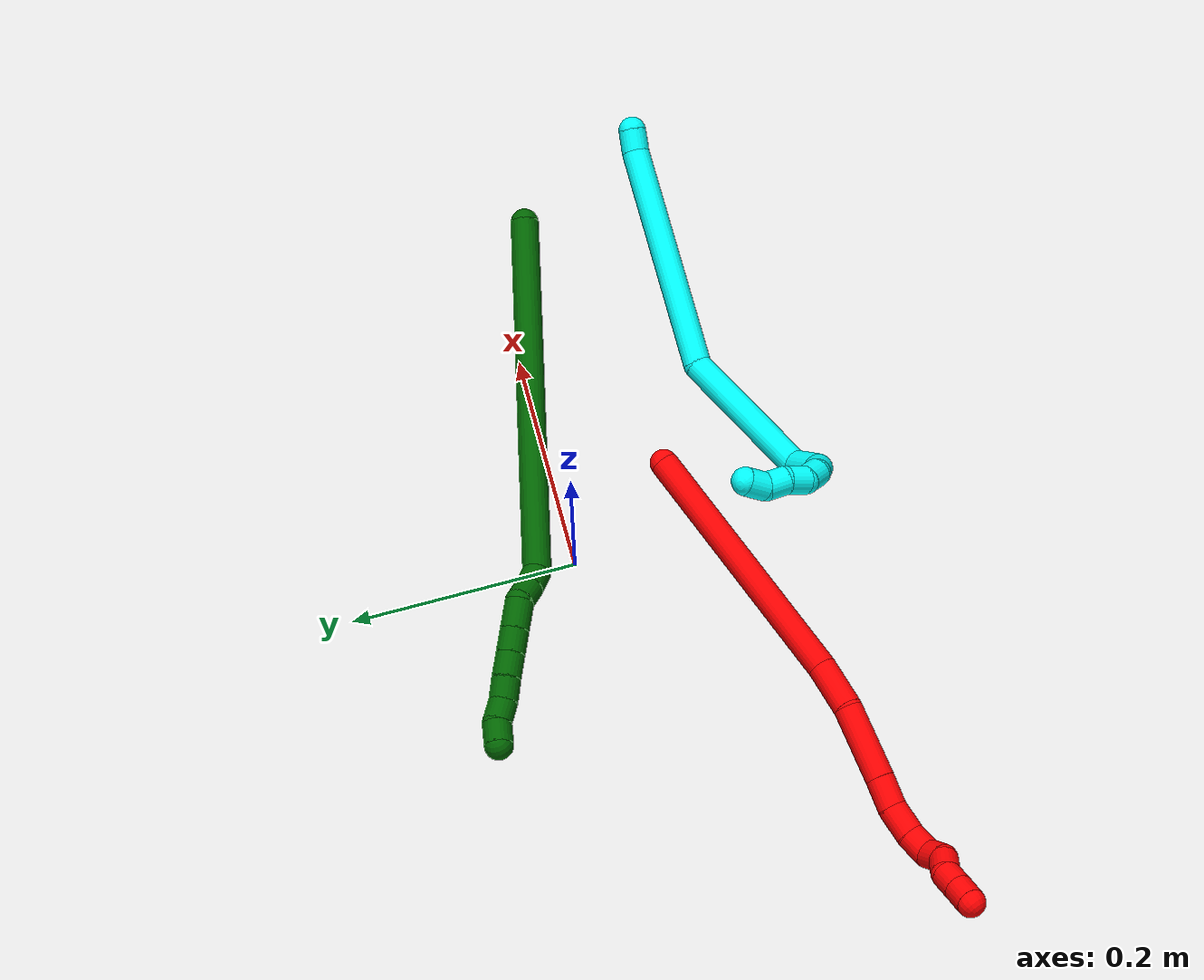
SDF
<sdf version="1.7">
 <world name="default">
  <model name="2">
   <static>0</static>
   <link name="2">
    <collision name="collision-cylinder-e_1_1_4">
     <pose>0.002897 -0.000135 0.115991 0.001164 0.024974 1.5e-05</pose>
     <geometry><cylinder><radius>0.0125</radius><length>0.232055</length></cylinder></geometry>
     <surface>
      <friction><ode><mu>1.16</mu><mu2>1.16</mu2><slip1>0</slip1><slip2>0</slip2></ode></friction>
      <contact><ode><kp>1e+06</kp><kd>1</kd><max_vel>0</max_vel><min_depth>0.001</min_depth></ode></contact>
     </surface>
    </collision>
    <visual name="visual-cylinder-e_1_1_4">
     <pose>0.002897 -0.000135 0.115991 0.001164 0.024974 1.5e-05</pose>
     <geometry><cylinder><radius>0.0125</radius><length>0.232055</length></cylinder></geometry>
     <material><ambient>1 0 0 1</ambient></material>
    </visual>
    <collision name="collision-cylinder-e_2_4_5">
     <pose>0.001091 -0.001725 0.254001 0.065966 -0.209993 -0.006954</pose>
     <geometry><cylinder><radius>0.0125</radius><length>0.045125</length></cylinder></geometry>
     <surface>
      <friction><ode><mu>1.16</mu><mu2>1.16</mu2><slip1>0</slip1><slip2>0</slip2></ode></friction>
      <contact><ode><kp>1e+06</kp><kd>1</kd><max_vel>0</max_vel><min_depth>0.001</min_depth></ode></contact>
     </surface>
    </collision>
    <visual name="visual-cylinder-e_2_4_5">
     <pose>0.001091 -0.001725 0.254001 0.065966 -0.209993 -0.006954</pose>
     <geometry><cylinder><radius>0.0125</radius><length>0.045125</length></cylinder></geometry>
     <material><ambient>1 0 0 1</ambient></material>
    </visual>
    <collision name="collision-cylinder-e_3_5_6">
     <pose>-0.00352 -0.010638 0.30811 0.228377 0.002788 0.00032</pose>
     <geometry><cylinder><radius>0.0125</radius><length>0.065891</length></cylinder></geometry>
     <surface>
      <friction><ode><mu>1.16</mu><mu2>1.16</mu2><slip1>0</slip1><slip2>0</slip2></ode></friction>
      <contact><ode><kp>1e+06</kp><kd>1</kd><max_vel>0</max_vel><min_depth>0.001</min_depth></ode></contact>
     </surface>
    </collision>
    <visual name="visual-cylinder-e_3_5_6">
     <pose>-0.00352 -0.010638 0.30811 0.228377 0.002788 0.00032</pose>
     <geometry><cylinder><radius>0.0125</radius><length>0.065891</length></cylinder></geometry>
     <material><ambient>1 0 0 1</ambient></material>
    </visual>
    <collision name="collision-cylinder-e_4_6_7">
     <pose>-0.003243 -0.021649 0.353381 0.263249 0.013529 0.001791</pose>
     <geometry><cylinder><radius>0.0125</radius><length>0.027306</length></cylinder></geometry>
     <surface>
      <friction><ode><mu>1.16</mu><mu2>1.16</mu2><slip1>0</slip1><slip2>0</slip2></ode></friction>
      <contact><ode><kp>1e+06</kp><kd>1</kd><max_vel>0</max_vel><min_depth>0.001</min_depth></ode></contact>
     </surface>
    </collision>
    <visual name="visual-cylinder-e_4_6_7">
     <pose>-0.003243 -0.021649 0.353381 0.263249 0.013529 0.001791</pose>
     <geometry><cylinder><radius>0.0125</radius><length>0.027306</length></cylinder></geometry>
     <material><ambient>1 0 0 1</ambient></material>
    </visual>
    <collision name="collision-cylinder-e_5_7_8">
     <pose>-0.004166 -0.025848 0.380162 0.047481 -0.081122 -0.001927</pose>
     <geometry><cylinder><radius>0.0125</radius><length>0.02732</length></cylinder></geometry>
     <surface>
      <friction><ode><mu>1.16</mu><mu2>1.16</mu2><slip1>0</slip1><slip2>0</slip2></ode></friction>
      <contact><ode><kp>1e+06</kp><kd>1</kd><max_vel>0</max_vel><min_depth>0.001</min_depth></ode></contact>
     </surface>
    </collision>
    <visual name="visual-cylinder-e_5_7_8">
     <pose>-0.004166 -0.025848 0.380162 0.047481 -0.081122 -0.001927</pose>
     <geometry><cylinder><radius>0.0125</radius><length>0.02732</length></cylinder></geometry>
     <material><ambient>1 0 0 1</ambient></material>
    </visual>
    <collision name="collision-cylinder-e_6_8_9">
     <pose>-0.006133 -0.025329 0.40424 -0.110704 -0.08142 0.004514</pose>
     <geometry><cylinder><radius>0.0125</radius><length>0.021156</length></cylinder></geometry>
     <surface>
      <friction><ode><mu>1.16</mu><mu2>1.16</mu2><slip1>0</slip1><slip2>0</slip2></ode></friction>
      <contact><ode><kp>1e+06</kp><kd>1</kd><max_vel>0</max_vel><min_depth>0.001</min_depth></ode></contact>
     </surface>
    </collision>
    <visual name="visual-cylinder-e_6_8_9">
     <pose>-0.006133 -0.025329 0.40424 -0.110704 -0.08142 0.004514</pose>
     <geometry><cylinder><radius>0.0125</radius><length>0.021156</length></cylinder></geometry>
     <material><ambient>1 0 0 1</ambient></material>
    </visual>
    <collision name="collision-cylinder-e_7_9_10">
     <pose>-0.01349 -0.019693 0.421527 -0.581126 -0.673298 0.208542</pose>
     <geometry><cylinder><radius>0.0125</radius><length>0.020839</length></cylinder></geometry>
     <surface>
      <friction><ode><mu>1.16</mu><mu2>1.16</mu2><slip1>0</slip1><slip2>0</slip2></ode></friction>
      <contact><ode><kp>1e+06</kp><kd>1</kd><max_vel>0</max_vel><min_depth>0.001</min_depth></ode></contact>
     </surface>
    </collision>
    <visual name="visual-cylinder-e_7_9_10">
     <pose>-0.01349 -0.019693 0.421527 -0.581126 -0.673298 0.208542</pose>
     <geometry><cylinder><radius>0.0125</radius><length>0.020839</length></cylinder></geometry>
     <material><ambient>1 0 0 1</ambient></material>
    </visual>
    <collision name="collision-cylinder-e_8_10_11">
     <pose>-0.027448 -0.017473 0.434833 0.333658 -0.826094 -0.147334</pose>
     <geometry><cylinder><radius>0.0125</radius><length>0.020293</length></cylinder></geometry>
     <surface>
      <friction><ode><mu>1.16</mu><mu2>1.16</mu2><slip1>0</slip1><slip2>0</slip2></ode></friction>
      <contact><ode><kp>1e+06</kp><kd>1</kd><max_vel>0</max_vel><min_depth>0.001</min_depth></ode></contact>
     </surface>
    </collision>
    <visual name="visual-cylinder-e_8_10_11">
     <pose>-0.027448 -0.017473 0.434833 0.333658 -0.826094 -0.147334</pose>
     <geometry><cylinder><radius>0.0125</radius><length>0.020293</length></cylinder></geometry>
     <material><ambient>1 0 0 1</ambient></material>
    </visual>
    <collision name="collision-cylinder-e_9_11_12">
     <pose>-0.040061 -0.018641 0.44984 -0.126734 -0.540899 0.03518</pose>
     <geometry><cylinder><radius>0.0125</radius><length>0.020014</length></cylinder></geometry>
     <surface>
      <friction><ode><mu>1.16</mu><mu2>1.16</mu2><slip1>0</slip1><slip2>0</slip2></ode></friction>
      <contact><ode><kp>1e+06</kp><kd>1</kd><max_vel>0</max_vel><min_depth>0.001</min_depth></ode></contact>
     </surface>
    </collision>
    <visual name="visual-cylinder-e_9_11_12">
     <pose>-0.040061 -0.018641 0.44984 -0.126734 -0.540899 0.03518</pose>
     <geometry><cylinder><radius>0.0125</radius><length>0.020014</length></cylinder></geometry>
     <material><ambient>1 0 0 1</ambient></material>
    </visual>
    <collision name="collision-cylinder-e_10_12_2">
     <pose>-0.050627 -0.016585 0.466702 -0.115886 -0.571974 0.034111</pose>
     <geometry><cylinder><radius>0.0125</radius><length>0.020003</length></cylinder></geometry>
     <surface>
      <friction><ode><mu>1.16</mu><mu2>1.16</mu2><slip1>0</slip1><slip2>0</slip2></ode></friction>
      <contact><ode><kp>1e+06</kp><kd>1</kd><max_vel>0</max_vel><min_depth>0.001</min_depth></ode></contact>
     </surface>
    </collision>
    <visual name="visual-cylinder-e_10_12_2">
     <pose>-0.050627 -0.016585 0.466702 -0.115886 -0.571974 0.034111</pose>
     <geometry><cylinder><radius>0.0125</radius><length>0.020003</length></cylinder></geometry>
     <material><ambient>1 0 0 1</ambient></material>
    </visual>
    <collision name="collision-sphere-2">
     <pose>-0.056041 -0.015612 0.475055 0 -0 0</pose>
     <geometry><sphere><radius>0.0125</radius></sphere></geometry>
     <surface>
      <friction><ode><mu>1.16</mu><mu2>1.16</mu2><slip1>0</slip1><slip2>0</slip2></ode></friction>
      <contact><ode><kp>1e+06</kp><kd>1</kd><max_vel>0</max_vel><min_depth>0.001</min_depth></ode></contact>
     </surface>
    </collision>
    <visual name="visual-sphere-2">
     <pose>-0.056041 -0.015612 0.475055 0 -0 0</pose>
     <geometry><sphere><radius>0.0125</radius></sphere></geometry>
     <material><ambient>1 0 0 1</ambient></material>
    </visual>
    <collision name="collision-sphere-12">
     <pose>-0.045214 -0.017557 0.458349 0 -0 0</pose>
     <geometry><sphere><radius>0.0125</radius></sphere></geometry>
     <surface>
      <friction><ode><mu>1.16</mu><mu2>1.16</mu2><slip1>0</slip1><slip2>0</slip2></ode></friction>
      <contact><ode><kp>1e+06</kp><kd>1</kd><max_vel>0</max_vel><min_depth>0.001</min_depth></ode></contact>
     </surface>
    </collision>
    <visual name="visual-sphere-12">
     <pose>-0.045214 -0.017557 0.458349 0 -0 0</pose>
     <geometry><sphere><radius>0.0125</radius></sphere></geometry>
     <material><ambient>1 0 0 1</ambient></material>
    </visual>
    <collision name="collision-sphere-11">
     <pose>-0.034908 -0.019725 0.44133 0 -0 0</pose>
     <geometry><sphere><radius>0.0125</radius></sphere></geometry>
     <surface>
      <friction><ode><mu>1.16</mu><mu2>1.16</mu2><slip1>0</slip1><slip2>0</slip2></ode></friction>
      <contact><ode><kp>1e+06</kp><kd>1</kd><max_vel>0</max_vel><min_depth>0.001</min_depth></ode></contact>
     </surface>
    </collision>
    <visual name="visual-sphere-11">
     <pose>-0.034908 -0.019725 0.44133 0 -0 0</pose>
     <geometry><sphere><radius>0.0125</radius></sphere></geometry>
     <material><ambient>1 0 0 1</ambient></material>
    </visual>
    <collision name="collision-sphere-10">
     <pose>-0.019987 -0.015221 0.428335 0 -0 0</pose>
     <geometry><sphere><radius>0.0125</radius></sphere></geometry>
     <surface>
      <friction><ode><mu>1.16</mu><mu2>1.16</mu2><slip1>0</slip1><slip2>0</slip2></ode></friction>
      <contact><ode><kp>1e+06</kp><kd>1</kd><max_vel>0</max_vel><min_depth>0.001</min_depth></ode></contact>
     </surface>
    </collision>
    <visual name="visual-sphere-10">
     <pose>-0.019987 -0.015221 0.428335 0 -0 0</pose>
     <geometry><sphere><radius>0.0125</radius></sphere></geometry>
     <material><ambient>1 0 0 1</ambient></material>
    </visual>
    <collision name="collision-sphere-9">
     <pose>-0.006993 -0.024164 0.414718 0 -0 0</pose>
     <geometry><sphere><radius>0.0125</radius></sphere></geometry>
     <surface>
      <friction><ode><mu>1.16</mu><mu2>1.16</mu2><slip1>0</slip1><slip2>0</slip2></ode></friction>
      <contact><ode><kp>1e+06</kp><kd>1</kd><max_vel>0</max_vel><min_depth>0.001</min_depth></ode></contact>
     </surface>
    </collision>
    <visual name="visual-sphere-9">
     <pose>-0.006993 -0.024164 0.414718 0 -0 0</pose>
     <geometry><sphere><radius>0.0125</radius></sphere></geometry>
     <material><ambient>1 0 0 1</ambient></material>
    </visual>
    <collision name="collision-sphere-4">
     <pose>0.005795 -0.00027 0.231982 0 -0 0</pose>
     <geometry><sphere><radius>0.0125</radius></sphere></geometry>
     <surface>
      <friction><ode><mu>1.16</mu><mu2>1.16</mu2><slip1>0</slip1><slip2>0</slip2></ode></friction>
      <contact><ode><kp>1e+06</kp><kd>1</kd><max_vel>0</max_vel><min_depth>0.001</min_depth></ode></contact>
     </surface>
    </collision>
    <visual name="visual-sphere-4">
     <pose>0.005795 -0.00027 0.231982 0 -0 0</pose>
     <geometry><sphere><radius>0.0125</radius></sphere></geometry>
     <material><ambient>1 0 0 1</ambient></material>
    </visual>
    <collision name="collision-sphere-1">
     <geometry><sphere><radius>0.0125</radius></sphere></geometry>
     <surface>
      <friction><ode><mu>1.16</mu><mu2>1.16</mu2><slip1>0</slip1><slip2>0</slip2></ode></friction>
      <contact><ode><kp>1e+06</kp><kd>1</kd><max_vel>0</max_vel><min_depth>0.001</min_depth></ode></contact>
     </surface>
    </collision>
    <visual name="visual-sphere-1">
     <geometry><sphere><radius>0.0125</radius></sphere></geometry>
     <material><ambient>1 0 0 1</ambient></material>
    </visual>
    <collision name="collision-sphere-8">
     <pose>-0.005272 -0.026494 0.393762 0 -0 0</pose>
     <geometry><sphere><radius>0.0125</radius></sphere></geometry>
     <surface>
      <friction><ode><mu>1.16</mu><mu2>1.16</mu2><slip1>0</slip1><slip2>0</slip2></ode></friction>
      <contact><ode><kp>1e+06</kp><kd>1</kd><max_vel>0</max_vel><min_depth>0.001</min_depth></ode></contact>
     </surface>
    </collision>
    <visual name="visual-sphere-8">
     <pose>-0.005272 -0.026494 0.393762 0 -0 0</pose>
     <geometry><sphere><radius>0.0125</radius></sphere></geometry>
     <material><ambient>1 0 0 1</ambient></material>
    </visual>
    <collision name="collision-sphere-5">
     <pose>-0.003612 -0.003179 0.27602 0 -0 0</pose>
     <geometry><sphere><radius>0.0125</radius></sphere></geometry>
     <surface>
      <friction><ode><mu>1.16</mu><mu2>1.16</mu2><slip1>0</slip1><slip2>0</slip2></ode></friction>
      <contact><ode><kp>1e+06</kp><kd>1</kd><max_vel>0</max_vel><min_depth>0.001</min_depth></ode></contact>
     </surface>
    </collision>
    <visual name="visual-sphere-5">
     <pose>-0.003612 -0.003179 0.27602 0 -0 0</pose>
     <geometry><sphere><radius>0.0125</radius></sphere></geometry>
     <material><ambient>1 0 0 1</ambient></material>
    </visual>
    <collision name="collision-sphere-6">
     <pose>-0.003428 -0.018097 0.3402 0 -0 0</pose>
     <geometry><sphere><radius>0.0125</radius></sphere></geometry>
     <surface>
      <friction><ode><mu>1.16</mu><mu2>1.16</mu2><slip1>0</slip1><slip2>0</slip2></ode></friction>
      <contact><ode><kp>1e+06</kp><kd>1</kd><max_vel>0</max_vel><min_depth>0.001</min_depth></ode></contact>
     </surface>
    </collision>
    <visual name="visual-sphere-6">
     <pose>-0.003428 -0.018097 0.3402 0 -0 0</pose>
     <geometry><sphere><radius>0.0125</radius></sphere></geometry>
     <material><ambient>1 0 0 1</ambient></material>
    </visual>
    <collision name="collision-sphere-7">
     <pose>-0.003059 -0.025201 0.366562 0 -0 0</pose>
     <geometry><sphere><radius>0.0125</radius></sphere></geometry>
     <surface>
      <friction><ode><mu>1.16</mu><mu2>1.16</mu2><slip1>0</slip1><slip2>0</slip2></ode></friction>
      <contact><ode><kp>1e+06</kp><kd>1</kd><max_vel>0</max_vel><min_depth>0.001</min_depth></ode></contact>
     </surface>
    </collision>
    <visual name="visual-sphere-7">
     <pose>-0.003059 -0.025201 0.366562 0 -0 0</pose>
     <geometry><sphere><radius>0.0125</radius></sphere></geometry>
     <material><ambient>1 0 0 1</ambient></material>
    </visual>
    <inertial>
     <pose>-0.00499 -0.008226 0.246427 0 -0 0</pose>
     <mass>0.5</mass>
     <inertia>
      <ixx>0.001093</ixx>
      <ixy>0</ixy>
      <ixz>0</ixz>
      <iyy>0.001097</iyy>
      <iyz>0</iyz>
      <izz>2.5e-05</izz>
     </inertia>
    </inertial>
   </link>
   <pose>0.068381 -0.098591 0.011484 1.49309 1.243 -1.29449</pose>
  </model>
  <model name="3">
   <static>0</static>
   <link name="3">
    <collision name="collision-cylinder-e_1_1_4">
     <pose>-0.007493 -0.007015 -0.003007 1.97574 -0.776158 -1.11001</pose>
     <geometry><cylinder><radius>0.0125</radius><length>0.021391</length></cylinder></geometry>
     <surface>
      <friction><ode><mu>1.16</mu><mu2>1.16</mu2><slip1>0</slip1><slip2>0</slip2></ode></friction>
      <contact><ode><kp>1e+06</kp><kd>1</kd><max_vel>0</max_vel><min_depth>0.001</min_depth></ode></contact>
     </surface>
    </collision>
    <visual name="visual-cylinder-e_1_1_4">
     <pose>-0.007493 -0.007015 -0.003007 1.97574 -0.776158 -1.11001</pose>
     <geometry><cylinder><radius>0.0125</radius><length>0.021391</length></cylinder></geometry>
     <material><ambient>0.003922 1 0.996078 1</ambient></material>
    </visual>
    <collision name="collision-cylinder-e_2_4_5">
     <pose>-0.099328 -0.061717 -0.051273 2.33008 -0.908682 -1.69878</pose>
     <geometry><cylinder><radius>0.0125</radius><length>0.213879</length></cylinder></geometry>
     <surface>
      <friction><ode><mu>1.16</mu><mu2>1.16</mu2><slip1>0</slip1><slip2>0</slip2></ode></friction>
      <contact><ode><kp>1e+06</kp><kd>1</kd><max_vel>0</max_vel><min_depth>0.001</min_depth></ode></contact>
     </surface>
    </collision>
    <visual name="visual-cylinder-e_2_4_5">
     <pose>-0.099328 -0.061717 -0.051273 2.33008 -0.908682 -1.69878</pose>
     <geometry><cylinder><radius>0.0125</radius><length>0.213879</length></cylinder></geometry>
     <material><ambient>0.003922 1 0.996078 1</ambient></material>
    </visual>
    <collision name="collision-cylinder-e_3_5_6">
     <pose>-0.246904 -0.112602 -0.113702 2.95745 -1.3013 -2.90019</pose>
     <geometry><cylinder><radius>0.0125</radius><length>0.131203</length></cylinder></geometry>
     <surface>
      <friction><ode><mu>1.16</mu><mu2>1.16</mu2><slip1>0</slip1><slip2>0</slip2></ode></friction>
      <contact><ode><kp>1e+06</kp><kd>1</kd><max_vel>0</max_vel><min_depth>0.001</min_depth></ode></contact>
     </surface>
    </collision>
    <visual name="visual-cylinder-e_3_5_6">
     <pose>-0.246904 -0.112602 -0.113702 2.95745 -1.3013 -2.90019</pose>
     <geometry><cylinder><radius>0.0125</radius><length>0.131203</length></cylinder></geometry>
     <material><ambient>0.003922 1 0.996078 1</ambient></material>
    </visual>
    <collision name="collision-cylinder-e_4_6_7">
     <pose>-0.321161 -0.106373 -0.139264 -2.29811 -0.717962 1.39303</pose>
     <geometry><cylinder><radius>0.0125</radius><length>0.033513</length></cylinder></geometry>
     <surface>
      <friction><ode><mu>1.16</mu><mu2>1.16</mu2><slip1>0</slip1><slip2>0</slip2></ode></friction>
      <contact><ode><kp>1e+06</kp><kd>1</kd><max_vel>0</max_vel><min_depth>0.001</min_depth></ode></contact>
     </surface>
    </collision>
    <visual name="visual-cylinder-e_4_6_7">
     <pose>-0.321161 -0.106373 -0.139264 -2.29811 -0.717962 1.39303</pose>
     <geometry><cylinder><radius>0.0125</radius><length>0.033513</length></cylinder></geometry>
     <material><ambient>0.003922 1 0.996078 1</ambient></material>
    </visual>
    <collision name="collision-cylinder-e_5_7_8">
     <pose>-0.333833 -0.094509 -0.157218 -2.89204 -0.165556 1.16882</pose>
     <geometry><cylinder><radius>0.0125</radius><length>0.020011</length></cylinder></geometry>
     <surface>
      <friction><ode><mu>1.16</mu><mu2>1.16</mu2><slip1>0</slip1><slip2>0</slip2></ode></friction>
      <contact><ode><kp>1e+06</kp><kd>1</kd><max_vel>0</max_vel><min_depth>0.001</min_depth></ode></contact>
     </surface>
    </collision>
    <visual name="visual-cylinder-e_5_7_8">
     <pose>-0.333833 -0.094509 -0.157218 -2.89204 -0.165556 1.16882</pose>
     <geometry><cylinder><radius>0.0125</radius><length>0.020011</length></cylinder></geometry>
     <material><ambient>0.003922 1 0.996078 1</ambient></material>
    </visual>
    <collision name="collision-cylinder-e_6_8_9">
     <pose>-0.33459 -0.092971 -0.176701 3.0512 0.089276 1.55841</pose>
     <geometry><cylinder><radius>0.0125</radius><length>0.020001</length></cylinder></geometry>
     <surface>
      <friction><ode><mu>1.16</mu><mu2>1.16</mu2><slip1>0</slip1><slip2>0</slip2></ode></friction>
      <contact><ode><kp>1e+06</kp><kd>1</kd><max_vel>0</max_vel><min_depth>0.001</min_depth></ode></contact>
     </surface>
    </collision>
    <visual name="visual-cylinder-e_6_8_9">
     <pose>-0.33459 -0.092971 -0.176701 3.0512 0.089276 1.55841</pose>
     <geometry><cylinder><radius>0.0125</radius><length>0.020001</length></cylinder></geometry>
     <material><ambient>0.003922 1 0.996078 1</ambient></material>
    </visual>
    <collision name="collision-cylinder-e_7_9_10">
     <pose>-0.327685 -0.095342 -0.194475 2.95631 0.645172 2.59939</pose>
     <geometry><cylinder><radius>0.0125</radius><length>0.02</length></cylinder></geometry>
     <surface>
      <friction><ode><mu>1.16</mu><mu2>1.16</mu2><slip1>0</slip1><slip2>0</slip2></ode></friction>
      <contact><ode><kp>1e+06</kp><kd>1</kd><max_vel>0</max_vel><min_depth>0.001</min_depth></ode></contact>
     </surface>
    </collision>
    <visual name="visual-cylinder-e_7_9_10">
     <pose>-0.327685 -0.095342 -0.194475 2.95631 0.645172 2.59939</pose>
     <geometry><cylinder><radius>0.0125</radius><length>0.02</length></cylinder></geometry>
     <material><ambient>0.003922 1 0.996078 1</ambient></material>
    </visual>
    <collision name="collision-cylinder-e_8_10_11">
     <pose>-0.316767 -0.101216 -0.209849 2.6121 0.512636 1.53694</pose>
     <geometry><cylinder><radius>0.0125</radius><length>0.02</length></cylinder></geometry>
     <surface>
      <friction><ode><mu>1.16</mu><mu2>1.16</mu2><slip1>0</slip1><slip2>0</slip2></ode></friction>
      <contact><ode><kp>1e+06</kp><kd>1</kd><max_vel>0</max_vel><min_depth>0.001</min_depth></ode></contact>
     </surface>
    </collision>
    <visual name="visual-cylinder-e_8_10_11">
     <pose>-0.316767 -0.101216 -0.209849 2.6121 0.512636 1.53694</pose>
     <geometry><cylinder><radius>0.0125</radius><length>0.02</length></cylinder></geometry>
     <material><ambient>0.003922 1 0.996078 1</ambient></material>
    </visual>
    <collision name="collision-cylinder-e_9_11_2">
     <pose>-0.304457 -0.105515 -0.22409 -3.12641 0.833863 -3.10731</pose>
     <geometry><cylinder><radius>0.0125</radius><length>0.020001</length></cylinder></geometry>
     <surface>
      <friction><ode><mu>1.16</mu><mu2>1.16</mu2><slip1>0</slip1><slip2>0</slip2></ode></friction>
      <contact><ode><kp>1e+06</kp><kd>1</kd><max_vel>0</max_vel><min_depth>0.001</min_depth></ode></contact>
     </surface>
    </collision>
    <visual name="visual-cylinder-e_9_11_2">
     <pose>-0.304457 -0.105515 -0.22409 -3.12641 0.833863 -3.10731</pose>
     <geometry><cylinder><radius>0.0125</radius><length>0.020001</length></cylinder></geometry>
     <material><ambient>0.003922 1 0.996078 1</ambient></material>
    </visual>
    <collision name="collision-sphere-2">
     <pose>-0.297051 -0.105413 -0.23081 0 -0 0</pose>
     <geometry><sphere><radius>0.0125</radius></sphere></geometry>
     <surface>
      <friction><ode><mu>1.16</mu><mu2>1.16</mu2><slip1>0</slip1><slip2>0</slip2></ode></friction>
      <contact><ode><kp>1e+06</kp><kd>1</kd><max_vel>0</max_vel><min_depth>0.001</min_depth></ode></contact>
     </surface>
    </collision>
    <visual name="visual-sphere-2">
     <pose>-0.297051 -0.105413 -0.23081 0 -0 0</pose>
     <geometry><sphere><radius>0.0125</radius></sphere></geometry>
     <material><ambient>0.003922 1 0.996078 1</ambient></material>
    </visual>
    <collision name="collision-sphere-11">
     <pose>-0.311862 -0.105617 -0.21737 0 -0 0</pose>
     <geometry><sphere><radius>0.0125</radius></sphere></geometry>
     <surface>
      <friction><ode><mu>1.16</mu><mu2>1.16</mu2><slip1>0</slip1><slip2>0</slip2></ode></friction>
      <contact><ode><kp>1e+06</kp><kd>1</kd><max_vel>0</max_vel><min_depth>0.001</min_depth></ode></contact>
     </surface>
    </collision>
    <visual name="visual-sphere-11">
     <pose>-0.311862 -0.105617 -0.21737 0 -0 0</pose>
     <geometry><sphere><radius>0.0125</radius></sphere></geometry>
     <material><ambient>0.003922 1 0.996078 1</ambient></material>
    </visual>
    <collision name="collision-sphere-10">
     <pose>-0.321672 -0.096814 -0.202328 0 -0 0</pose>
     <geometry><sphere><radius>0.0125</radius></sphere></geometry>
     <surface>
      <friction><ode><mu>1.16</mu><mu2>1.16</mu2><slip1>0</slip1><slip2>0</slip2></ode></friction>
      <contact><ode><kp>1e+06</kp><kd>1</kd><max_vel>0</max_vel><min_depth>0.001</min_depth></ode></contact>
     </surface>
    </collision>
    <visual name="visual-sphere-10">
     <pose>-0.321672 -0.096814 -0.202328 0 -0 0</pose>
     <geometry><sphere><radius>0.0125</radius></sphere></geometry>
     <material><ambient>0.003922 1 0.996078 1</ambient></material>
    </visual>
    <collision name="collision-sphere-9">
     <pose>-0.333699 -0.09387 -0.186621 0 -0 0</pose>
     <geometry><sphere><radius>0.0125</radius></sphere></geometry>
     <surface>
      <friction><ode><mu>1.16</mu><mu2>1.16</mu2><slip1>0</slip1><slip2>0</slip2></ode></friction>
      <contact><ode><kp>1e+06</kp><kd>1</kd><max_vel>0</max_vel><min_depth>0.001</min_depth></ode></contact>
     </surface>
    </collision>
    <visual name="visual-sphere-9">
     <pose>-0.333699 -0.09387 -0.186621 0 -0 0</pose>
     <geometry><sphere><radius>0.0125</radius></sphere></geometry>
     <material><ambient>0.003922 1 0.996078 1</ambient></material>
    </visual>
    <collision name="collision-sphere-4">
     <pose>-0.014986 -0.014031 -0.006014 0 -0 0</pose>
     <geometry><sphere><radius>0.0125</radius></sphere></geometry>
     <surface>
      <friction><ode><mu>1.16</mu><mu2>1.16</mu2><slip1>0</slip1><slip2>0</slip2></ode></friction>
      <contact><ode><kp>1e+06</kp><kd>1</kd><max_vel>0</max_vel><min_depth>0.001</min_depth></ode></contact>
     </surface>
    </collision>
    <visual name="visual-sphere-4">
     <pose>-0.014986 -0.014031 -0.006014 0 -0 0</pose>
     <geometry><sphere><radius>0.0125</radius></sphere></geometry>
     <material><ambient>0.003922 1 0.996078 1</ambient></material>
    </visual>
    <collision name="collision-sphere-1">
     <geometry><sphere><radius>0.0125</radius></sphere></geometry>
     <surface>
      <friction><ode><mu>1.16</mu><mu2>1.16</mu2><slip1>0</slip1><slip2>0</slip2></ode></friction>
      <contact><ode><kp>1e+06</kp><kd>1</kd><max_vel>0</max_vel><min_depth>0.001</min_depth></ode></contact>
     </surface>
    </collision>
    <visual name="visual-sphere-1">
     <geometry><sphere><radius>0.0125</radius></sphere></geometry>
     <material><ambient>0.003922 1 0.996078 1</ambient></material>
    </visual>
    <collision name="collision-sphere-8">
     <pose>-0.335482 -0.092072 -0.166781 0 -0 0</pose>
     <geometry><sphere><radius>0.0125</radius></sphere></geometry>
     <surface>
      <friction><ode><mu>1.16</mu><mu2>1.16</mu2><slip1>0</slip1><slip2>0</slip2></ode></friction>
      <contact><ode><kp>1e+06</kp><kd>1</kd><max_vel>0</max_vel><min_depth>0.001</min_depth></ode></contact>
     </surface>
    </collision>
    <visual name="visual-sphere-8">
     <pose>-0.335482 -0.092072 -0.166781 0 -0 0</pose>
     <geometry><sphere><radius>0.0125</radius></sphere></geometry>
     <material><ambient>0.003922 1 0.996078 1</ambient></material>
    </visual>
    <collision name="collision-sphere-5">
     <pose>-0.183671 -0.109404 -0.096532 0 -0 0</pose>
     <geometry><sphere><radius>0.0125</radius></sphere></geometry>
     <surface>
      <friction><ode><mu>1.16</mu><mu2>1.16</mu2><slip1>0</slip1><slip2>0</slip2></ode></friction>
      <contact><ode><kp>1e+06</kp><kd>1</kd><max_vel>0</max_vel><min_depth>0.001</min_depth></ode></contact>
     </surface>
    </collision>
    <visual name="visual-sphere-5">
     <pose>-0.183671 -0.109404 -0.096532 0 -0 0</pose>
     <geometry><sphere><radius>0.0125</radius></sphere></geometry>
     <material><ambient>0.003922 1 0.996078 1</ambient></material>
    </visual>
    <collision name="collision-sphere-6">
     <pose>-0.310137 -0.1158 -0.130873 0 -0 0</pose>
     <geometry><sphere><radius>0.0125</radius></sphere></geometry>
     <surface>
      <friction><ode><mu>1.16</mu><mu2>1.16</mu2><slip1>0</slip1><slip2>0</slip2></ode></friction>
      <contact><ode><kp>1e+06</kp><kd>1</kd><max_vel>0</max_vel><min_depth>0.001</min_depth></ode></contact>
     </surface>
    </collision>
    <visual name="visual-sphere-6">
     <pose>-0.310137 -0.1158 -0.130873 0 -0 0</pose>
     <geometry><sphere><radius>0.0125</radius></sphere></geometry>
     <material><ambient>0.003922 1 0.996078 1</ambient></material>
    </visual>
    <collision name="collision-sphere-7">
     <pose>-0.332184 -0.096946 -0.147654 0 -0 0</pose>
     <geometry><sphere><radius>0.0125</radius></sphere></geometry>
     <surface>
      <friction><ode><mu>1.16</mu><mu2>1.16</mu2><slip1>0</slip1><slip2>0</slip2></ode></friction>
      <contact><ode><kp>1e+06</kp><kd>1</kd><max_vel>0</max_vel><min_depth>0.001</min_depth></ode></contact>
     </surface>
    </collision>
    <visual name="visual-sphere-7">
     <pose>-0.332184 -0.096946 -0.147654 0 -0 0</pose>
     <geometry><sphere><radius>0.0125</radius></sphere></geometry>
     <material><ambient>0.003922 1 0.996078 1</ambient></material>
    </visual>
    <inertial>
     <pose>-0.193827 -0.082962 -0.099729 0 -0 0</pose>
     <mass>0.5</mass>
     <inertia>
      <ixx>-0.000646</ixx>
      <ixy>0</ixy>
      <ixz>0</ixz>
      <iyy>0.000221</iyy>
      <iyz>0</iyz>
      <izz>0.001195</izz>
     </inertia>
    </inertial>
   </link>
   <pose>0.384468 -0.154846 0.034178 2.33102 -0.050034 0.661923</pose>
  </model>
  <model name="6">
   <static>0</static>
   <link name="6">
    <collision name="collision-cylinder-e_1_1_4">
     <pose>-0.134273 -0.044538 -0.083825 2.6532 -0.955432 -2.24445</pose>
     <geometry><cylinder><radius>0.0125</radius><length>0.328874</length></cylinder></geometry>
     <surface>
      <friction><ode><mu>1.16</mu><mu2>1.16</mu2><slip1>0</slip1><slip2>0</slip2></ode></friction>
      <contact><ode><kp>1e+06</kp><kd>1</kd><max_vel>0</max_vel><min_depth>0.001</min_depth></ode></contact>
     </surface>
    </collision>
    <visual name="visual-cylinder-e_1_1_4">
     <pose>-0.134273 -0.044538 -0.083825 2.6532 -0.955432 -2.24445</pose>
     <geometry><cylinder><radius>0.0125</radius><length>0.328874</length></cylinder></geometry>
     <material><ambient>0 0.392157 0.003922 1</ambient></material>
    </visual>
    <collision name="collision-cylinder-e_2_4_5">
     <pose>-0.278826 -0.090381 -0.167113 1.18057 -1.43449 -1.05766</pose>
     <geometry><cylinder><radius>0.0125</radius><length>0.020752</length></cylinder></geometry>
     <surface>
      <friction><ode><mu>1.16</mu><mu2>1.16</mu2><slip1>0</slip1><slip2>0</slip2></ode></friction>
      <contact><ode><kp>1e+06</kp><kd>1</kd><max_vel>0</max_vel><min_depth>0.001</min_depth></ode></contact>
     </surface>
    </collision>
    <visual name="visual-cylinder-e_2_4_5">
     <pose>-0.278826 -0.090381 -0.167113 1.18057 -1.43449 -1.05766</pose>
     <geometry><cylinder><radius>0.0125</radius><length>0.020752</length></cylinder></geometry>
     <material><ambient>0 0.392157 0.003922 1</ambient></material>
    </visual>
    <collision name="collision-cylinder-e_3_5_6">
     <pose>-0.299399 -0.092793 -0.164657 0.523549 -1.35875 -0.426194</pose>
     <geometry><cylinder><radius>0.0125</radius><length>0.021059</length></cylinder></geometry>
     <surface>
      <friction><ode><mu>1.16</mu><mu2>1.16</mu2><slip1>0</slip1><slip2>0</slip2></ode></friction>
      <contact><ode><kp>1e+06</kp><kd>1</kd><max_vel>0</max_vel><min_depth>0.001</min_depth></ode></contact>
     </surface>
    </collision>
    <visual name="visual-cylinder-e_3_5_6">
     <pose>-0.299399 -0.092793 -0.164657 0.523549 -1.35875 -0.426194</pose>
     <geometry><cylinder><radius>0.0125</radius><length>0.021059</length></cylinder></geometry>
     <material><ambient>0 0.392157 0.003922 1</ambient></material>
    </visual>
    <collision name="collision-cylinder-e_4_6_7">
     <pose>-0.321653 -0.095512 -0.168202 2.85472 -1.12628 -2.6918</pose>
     <geometry><cylinder><radius>0.0125</radius><length>0.026495</length></cylinder></geometry>
     <surface>
      <friction><ode><mu>1.16</mu><mu2>1.16</mu2><slip1>0</slip1><slip2>0</slip2></ode></friction>
      <contact><ode><kp>1e+06</kp><kd>1</kd><max_vel>0</max_vel><min_depth>0.001</min_depth></ode></contact>
     </surface>
    </collision>
    <visual name="visual-cylinder-e_4_6_7">
     <pose>-0.321653 -0.095512 -0.168202 2.85472 -1.12628 -2.6918</pose>
     <geometry><cylinder><radius>0.0125</radius><length>0.026495</length></cylinder></geometry>
     <material><ambient>0 0.392157 0.003922 1</ambient></material>
    </visual>
    <collision name="collision-cylinder-e_5_7_8">
     <pose>-0.343233 -0.098422 -0.178061 2.85443 -1.12625 -2.69134</pose>
     <geometry><cylinder><radius>0.0125</radius><length>0.021311</length></cylinder></geometry>
     <surface>
      <friction><ode><mu>1.16</mu><mu2>1.16</mu2><slip1>0</slip1><slip2>0</slip2></ode></friction>
      <contact><ode><kp>1e+06</kp><kd>1</kd><max_vel>0</max_vel><min_depth>0.001</min_depth></ode></contact>
     </surface>
    </collision>
    <visual name="visual-cylinder-e_5_7_8">
     <pose>-0.343233 -0.098422 -0.178061 2.85443 -1.12625 -2.69134</pose>
     <geometry><cylinder><radius>0.0125</radius><length>0.021311</length></cylinder></geometry>
     <material><ambient>0 0.392157 0.003922 1</ambient></material>
    </visual>
    <collision name="collision-cylinder-e_6_8_9">
     <pose>-0.362398 -0.101004 -0.186915 2.8613 -1.11823 -2.6981</pose>
     <geometry><cylinder><radius>0.0125</radius><length>0.021226</length></cylinder></geometry>
     <surface>
      <friction><ode><mu>1.16</mu><mu2>1.16</mu2><slip1>0</slip1><slip2>0</slip2></ode></friction>
      <contact><ode><kp>1e+06</kp><kd>1</kd><max_vel>0</max_vel><min_depth>0.001</min_depth></ode></contact>
     </surface>
    </collision>
    <visual name="visual-cylinder-e_6_8_9">
     <pose>-0.362398 -0.101004 -0.186915 2.8613 -1.11823 -2.6981</pose>
     <geometry><cylinder><radius>0.0125</radius><length>0.021226</length></cylinder></geometry>
     <material><ambient>0 0.392157 0.003922 1</ambient></material>
    </visual>
    <collision name="collision-cylinder-e_7_9_10">
     <pose>-0.380715 -0.103516 -0.196234 2.89405 -1.05173 -2.71928</pose>
     <geometry><cylinder><radius>0.0125</radius><length>0.020207</length></cylinder></geometry>
     <surface>
      <friction><ode><mu>1.16</mu><mu2>1.16</mu2><slip1>0</slip1><slip2>0</slip2></ode></friction>
      <contact><ode><kp>1e+06</kp><kd>1</kd><max_vel>0</max_vel><min_depth>0.001</min_depth></ode></contact>
     </surface>
    </collision>
    <visual name="visual-cylinder-e_7_9_10">
     <pose>-0.380715 -0.103516 -0.196234 2.89405 -1.05173 -2.71928</pose>
     <geometry><cylinder><radius>0.0125</radius><length>0.020207</length></cylinder></geometry>
     <material><ambient>0 0.392157 0.003922 1</ambient></material>
    </visual>
    <collision name="collision-cylinder-e_8_10_11">
     <pose>-0.399155 -0.105682 -0.203605 2.78412 -1.30025 -2.67506</pose>
     <geometry><cylinder><radius>0.0125</radius><length>0.020064</length></cylinder></geometry>
     <surface>
      <friction><ode><mu>1.16</mu><mu2>1.16</mu2><slip1>0</slip1><slip2>0</slip2></ode></friction>
      <contact><ode><kp>1e+06</kp><kd>1</kd><max_vel>0</max_vel><min_depth>0.001</min_depth></ode></contact>
     </surface>
    </collision>
    <visual name="visual-cylinder-e_8_10_11">
     <pose>-0.399155 -0.105682 -0.203605 2.78412 -1.30025 -2.67506</pose>
     <geometry><cylinder><radius>0.0125</radius><length>0.020064</length></cylinder></geometry>
     <material><ambient>0 0.392157 0.003922 1</ambient></material>
    </visual>
    <collision name="collision-cylinder-e_9_11_2">
     <pose>-0.417154 -0.110446 -0.210123 2.37917 -0.984072 -1.85743</pose>
     <geometry><cylinder><radius>0.0125</radius><length>0.020012</length></cylinder></geometry>
     <surface>
      <friction><ode><mu>1.16</mu><mu2>1.16</mu2><slip1>0</slip1><slip2>0</slip2></ode></friction>
      <contact><ode><kp>1e+06</kp><kd>1</kd><max_vel>0</max_vel><min_depth>0.001</min_depth></ode></contact>
     </surface>
    </collision>
    <visual name="visual-cylinder-e_9_11_2">
     <pose>-0.417154 -0.110446 -0.210123 2.37917 -0.984072 -1.85743</pose>
     <geometry><cylinder><radius>0.0125</radius><length>0.020012</length></cylinder></geometry>
     <material><ambient>0 0.392157 0.003922 1</ambient></material>
    </visual>
    <collision name="collision-sphere-2">
     <pose>-0.425487 -0.114272 -0.214129 0 -0 0</pose>
     <geometry><sphere><radius>0.0125</radius></sphere></geometry>
     <surface>
      <friction><ode><mu>1.16</mu><mu2>1.16</mu2><slip1>0</slip1><slip2>0</slip2></ode></friction>
      <contact><ode><kp>1e+06</kp><kd>1</kd><max_vel>0</max_vel><min_depth>0.001</min_depth></ode></contact>
     </surface>
    </collision>
    <visual name="visual-sphere-2">
     <pose>-0.425487 -0.114272 -0.214129 0 -0 0</pose>
     <geometry><sphere><radius>0.0125</radius></sphere></geometry>
     <material><ambient>0 0.392157 0.003922 1</ambient></material>
    </visual>
    <collision name="collision-sphere-11">
     <pose>-0.408822 -0.10662 -0.206117 0 -0 0</pose>
     <geometry><sphere><radius>0.0125</radius></sphere></geometry>
     <surface>
      <friction><ode><mu>1.16</mu><mu2>1.16</mu2><slip1>0</slip1><slip2>0</slip2></ode></friction>
      <contact><ode><kp>1e+06</kp><kd>1</kd><max_vel>0</max_vel><min_depth>0.001</min_depth></ode></contact>
     </surface>
    </collision>
    <visual name="visual-sphere-11">
     <pose>-0.408822 -0.10662 -0.206117 0 -0 0</pose>
     <geometry><sphere><radius>0.0125</radius></sphere></geometry>
     <material><ambient>0 0.392157 0.003922 1</ambient></material>
    </visual>
    <collision name="collision-sphere-10">
     <pose>-0.389488 -0.104744 -0.201094 0 -0 0</pose>
     <geometry><sphere><radius>0.0125</radius></sphere></geometry>
     <surface>
      <friction><ode><mu>1.16</mu><mu2>1.16</mu2><slip1>0</slip1><slip2>0</slip2></ode></friction>
      <contact><ode><kp>1e+06</kp><kd>1</kd><max_vel>0</max_vel><min_depth>0.001</min_depth></ode></contact>
     </surface>
    </collision>
    <visual name="visual-sphere-10">
     <pose>-0.389488 -0.104744 -0.201094 0 -0 0</pose>
     <geometry><sphere><radius>0.0125</radius></sphere></geometry>
     <material><ambient>0 0.392157 0.003922 1</ambient></material>
    </visual>
    <collision name="collision-sphere-9">
     <pose>-0.371942 -0.102288 -0.191375 0 -0 0</pose>
     <geometry><sphere><radius>0.0125</radius></sphere></geometry>
     <surface>
      <friction><ode><mu>1.16</mu><mu2>1.16</mu2><slip1>0</slip1><slip2>0</slip2></ode></friction>
      <contact><ode><kp>1e+06</kp><kd>1</kd><max_vel>0</max_vel><min_depth>0.001</min_depth></ode></contact>
     </surface>
    </collision>
    <visual name="visual-sphere-9">
     <pose>-0.371942 -0.102288 -0.191375 0 -0 0</pose>
     <geometry><sphere><radius>0.0125</radius></sphere></geometry>
     <material><ambient>0 0.392157 0.003922 1</ambient></material>
    </visual>
    <collision name="collision-sphere-4">
     <pose>-0.268546 -0.089077 -0.167649 0 -0 0</pose>
     <geometry><sphere><radius>0.0125</radius></sphere></geometry>
     <surface>
      <friction><ode><mu>1.16</mu><mu2>1.16</mu2><slip1>0</slip1><slip2>0</slip2></ode></friction>
      <contact><ode><kp>1e+06</kp><kd>1</kd><max_vel>0</max_vel><min_depth>0.001</min_depth></ode></contact>
     </surface>
    </collision>
    <visual name="visual-sphere-4">
     <pose>-0.268546 -0.089077 -0.167649 0 -0 0</pose>
     <geometry><sphere><radius>0.0125</radius></sphere></geometry>
     <material><ambient>0 0.392157 0.003922 1</ambient></material>
    </visual>
    <collision name="collision-sphere-1">
     <geometry><sphere><radius>0.0125</radius></sphere></geometry>
     <surface>
      <friction><ode><mu>1.16</mu><mu2>1.16</mu2><slip1>0</slip1><slip2>0</slip2></ode></friction>
      <contact><ode><kp>1e+06</kp><kd>1</kd><max_vel>0</max_vel><min_depth>0.001</min_depth></ode></contact>
     </surface>
    </collision>
    <visual name="visual-sphere-1">
     <geometry><sphere><radius>0.0125</radius></sphere></geometry>
     <material><ambient>0 0.392157 0.003922 1</ambient></material>
    </visual>
    <collision name="collision-sphere-8">
     <pose>-0.352853 -0.09972 -0.182455 0 -0 0</pose>
     <geometry><sphere><radius>0.0125</radius></sphere></geometry>
     <surface>
      <friction><ode><mu>1.16</mu><mu2>1.16</mu2><slip1>0</slip1><slip2>0</slip2></ode></friction>
      <contact><ode><kp>1e+06</kp><kd>1</kd><max_vel>0</max_vel><min_depth>0.001</min_depth></ode></contact>
     </surface>
    </collision>
    <visual name="visual-sphere-8">
     <pose>-0.352853 -0.09972 -0.182455 0 -0 0</pose>
     <geometry><sphere><radius>0.0125</radius></sphere></geometry>
     <material><ambient>0 0.392157 0.003922 1</ambient></material>
    </visual>
    <collision name="collision-sphere-5">
     <pose>-0.289106 -0.091685 -0.166576 0 -0 0</pose>
     <geometry><sphere><radius>0.0125</radius></sphere></geometry>
     <surface>
      <friction><ode><mu>1.16</mu><mu2>1.16</mu2><slip1>0</slip1><slip2>0</slip2></ode></friction>
      <contact><ode><kp>1e+06</kp><kd>1</kd><max_vel>0</max_vel><min_depth>0.001</min_depth></ode></contact>
     </surface>
    </collision>
    <visual name="visual-sphere-5">
     <pose>-0.289106 -0.091685 -0.166576 0 -0 0</pose>
     <geometry><sphere><radius>0.0125</radius></sphere></geometry>
     <material><ambient>0 0.392157 0.003922 1</ambient></material>
    </visual>
    <collision name="collision-sphere-6">
     <pose>-0.309693 -0.093901 -0.162738 0 -0 0</pose>
     <geometry><sphere><radius>0.0125</radius></sphere></geometry>
     <surface>
      <friction><ode><mu>1.16</mu><mu2>1.16</mu2><slip1>0</slip1><slip2>0</slip2></ode></friction>
      <contact><ode><kp>1e+06</kp><kd>1</kd><max_vel>0</max_vel><min_depth>0.001</min_depth></ode></contact>
     </surface>
    </collision>
    <visual name="visual-sphere-6">
     <pose>-0.309693 -0.093901 -0.162738 0 -0 0</pose>
     <geometry><sphere><radius>0.0125</radius></sphere></geometry>
     <material><ambient>0 0.392157 0.003922 1</ambient></material>
    </visual>
    <collision name="collision-sphere-7">
     <pose>-0.333613 -0.097124 -0.173666 0 -0 0</pose>
     <geometry><sphere><radius>0.0125</radius></sphere></geometry>
     <surface>
      <friction><ode><mu>1.16</mu><mu2>1.16</mu2><slip1>0</slip1><slip2>0</slip2></ode></friction>
      <contact><ode><kp>1e+06</kp><kd>1</kd><max_vel>0</max_vel><min_depth>0.001</min_depth></ode></contact>
     </surface>
    </collision>
    <visual name="visual-sphere-7">
     <pose>-0.333613 -0.097124 -0.173666 0 -0 0</pose>
     <geometry><sphere><radius>0.0125</radius></sphere></geometry>
     <material><ambient>0 0.392157 0.003922 1</ambient></material>
    </visual>
    <inertial>
     <pose>-0.207658 -0.063343 -0.117954 0 -0 0</pose>
     <mass>0.5</mass>
     <inertia>
      <ixx>-0.002454</ixx>
      <ixy>0</ixy>
      <ixz>0</ixz>
      <iyy>0.00119</iyy>
      <iyz>0</iyz>
      <izz>0.003235</izz>
     </inertia>
    </inertial>
   </link>
   <pose>0.309378 -0.03454 0.053041 -0.457494 0.352183 -0.705571</pose>
  </model>
 </world>
</sdf>
